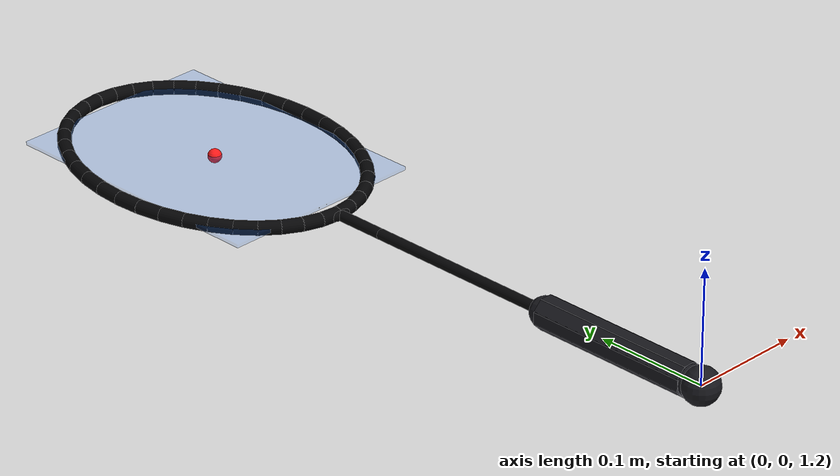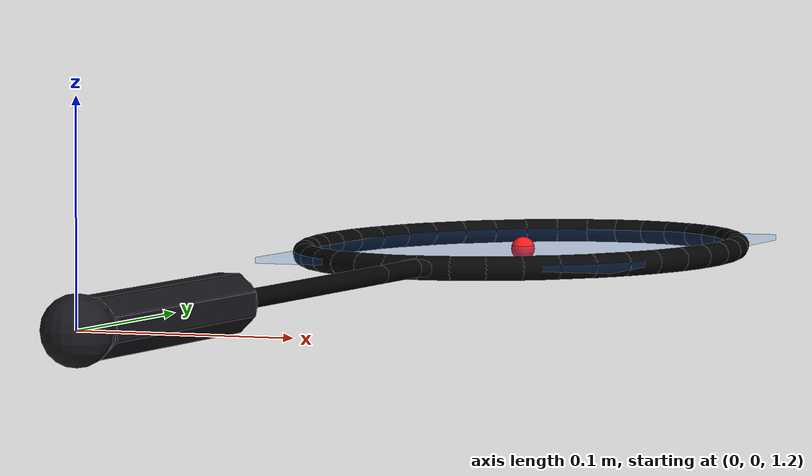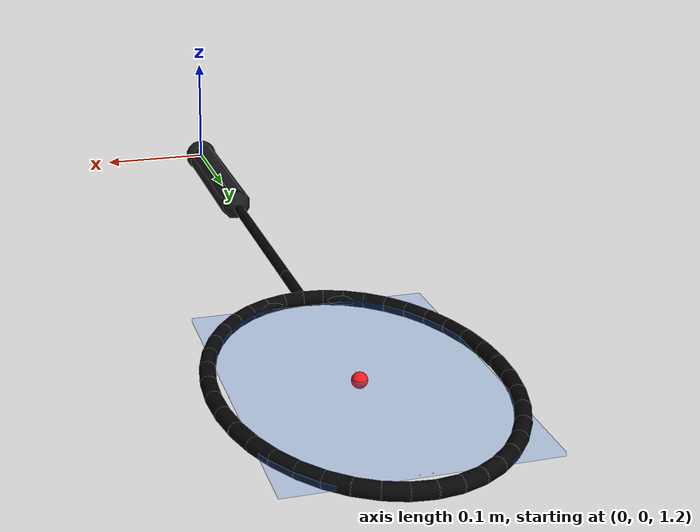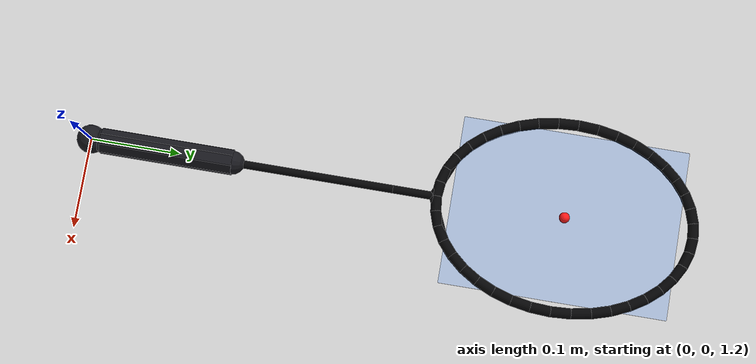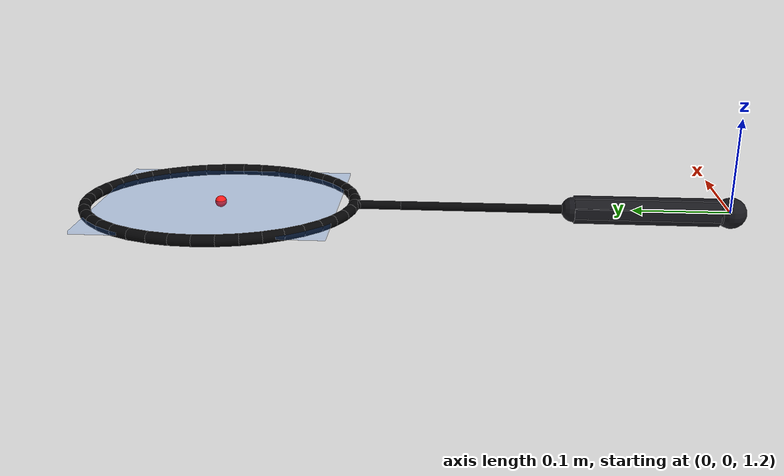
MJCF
<?xml version="1.0" encoding="UTF-8"?>
<mujoco model="badminton_racket_flex_proxy">
  <compiler angle="degree" autolimits="true"/>
  <option timestep="0.0005" integrator="implicitfast" gravity="0 0 -9.81"/>
  <default>
    <geom condim="3" friction="0.8 0.02 0.001" solref="0.0015 1" solimp="0.95 0.99 0.001"/>
    <site rgba="1 0.3 0.1 1"/>
    <default class="frame_contact">
      <geom contype="1" conaffinity="1"/>
    </default>
    <default class="string_visual">
      <geom contype="0" conaffinity="0"/>
    </default>
    <default class="stringbed_ground_contact">
      <geom contype="1" conaffinity="1" group="1" condim="4" friction="1.1 0.05 0.003" solref="0.004 1" solimp="0.92 0.98 0.001"/>
    </default>
  </default>
  <worldbody>
    <body name="racket_handle" pos="0 0 1.2">
      <freejoint name="racket_handle_free"/>
      <inertial pos="0 0.135 0" mass="0.035" diaginertia="0.00048 0.00004 0.00048"/>
      <site name="grip_pose_site" pos="0 0.09 0" size="0.006"/>
      <site name="butt_site" pos="0 0 0" size="0.004" rgba="0.1 1 0.1 1"/>
      <geom name="butt_cap" class="frame_contact" type="sphere" pos="0 0 0" size="0.016" rgba="0.1 0.1 0.12 1" contype="1" conaffinity="1"/>
      <geom name="handle_grip" type="capsule" pos="0 0.086 0" quat="0.707107 0.707107 0 0" size="0.01321 0.074" rgba="0.1 0.1 0.12 1" contype="0" conaffinity="0" condim="4" friction="1.4 0.03 0.003" solref="0.004 1" solimp="0.9 0.97 0.002" margin="0.001"/>
      <geom name="handle_bevel_00" class="frame_contact" type="box" pos="0.012525 0.086 0" quat="0.707107 0 0.707107 0" size="0.00519 0.074 0.001" rgba="0.1 0.1 0.12 1" contype="1" conaffinity="1"/>
      <geom name="handle_bevel_01" class="frame_contact" type="box" pos="0.008857 0.086 0.008857" quat="0.92388 0 0.382683 0" size="0.00519 0.074 0.001" rgba="0.1 0.1 0.12 1" contype="1" conaffinity="1"/>
      <geom name="handle_bevel_02" class="frame_contact" type="box" pos="0 0.086 0.012525" quat="1 0 0 0" size="0.00519 0.074 0.001" rgba="0.1 0.1 0.12 1" contype="1" conaffinity="1"/>
      <geom name="handle_bevel_03" class="frame_contact" type="box" pos="-0.008857 0.086 0.008857" quat="0.92388 0 -0.382683 0" size="0.00519 0.074 0.001" rgba="0.1 0.1 0.12 1" contype="1" conaffinity="1"/>
      <geom name="handle_bevel_04" class="frame_contact" type="box" pos="-0.012525 0.086 0" quat="0.707107 0 -0.707107 0" size="0.00519 0.074 0.001" rgba="0.1 0.1 0.12 1" contype="1" conaffinity="1"/>
      <geom name="handle_bevel_05" class="frame_contact" type="box" pos="-0.008857 0.086 -0.008857" quat="0.382683 0 -0.92388 0" size="0.00519 0.074 0.001" rgba="0.1 0.1 0.12 1" contype="1" conaffinity="1"/>
      <geom name="handle_bevel_06" class="frame_contact" type="box" pos="0 0.086 -0.012525" quat="0 0 -1 0" size="0.00519 0.074 0.001" rgba="0.1 0.1 0.12 1" contype="1" conaffinity="1"/>
      <geom name="handle_bevel_07" class="frame_contact" type="box" pos="0.008857 0.086 -0.008857" quat="-0.382683 0 -0.92388 0" size="0.00519 0.074 0.001" rgba="0.1 0.1 0.12 1" contype="1" conaffinity="1"/>
      <geom name="lower_shaft" class="frame_contact" type="capsule" fromto="0 0.17 0 0 0.34 0" size="0.0045" rgba="0.02 0.02 0.025 1" contype="1" conaffinity="1"/>
      <body name="racket_head" pos="0 0.34 0">
        <joint name="shaft_flex_x" type="hinge" axis="1 0 0" stiffness="398.6" damping="0.04" limited="true" range="-8 8"/>
        <joint name="shaft_flex_z" type="hinge" axis="0 0 1" stiffness="393.4" damping="0.045" limited="true" range="-8 8"/>
        <inertial pos="0 0.190 0" mass="0.055" diaginertia="0.00175 0.00014 0.00170"/>
        <site name="stringbed_center_site" pos="0 0.192 0" size="0.006" rgba="1 0.1 0.1 1"/>
        <site name="head_tip_site" pos="0 0.335 0" size="0.004" rgba="1 1 0 1"/>
        <geom name="upper_shaft" class="frame_contact" type="capsule" fromto="0 0 0 0 0.045 0" size="0.0045" rgba="0.02 0.02 0.025 1" contype="1" conaffinity="1"/>
        <geom name="throat_left" class="frame_contact" type="capsule" fromto="0 0.045 0 -0.052 0.067 0" size="0.0045" rgba="0.02 0.02 0.025 1" contype="1" conaffinity="1"/>
        <geom name="throat_right" class="frame_contact" type="capsule" fromto="0 0.045 0 0.052 0.067 0" size="0.0045" rgba="0.02 0.02 0.025 1" contype="1" conaffinity="1"/>
        <geom name="head_frame_00" class="frame_contact" type="capsule" fromto="0.105 0.192 0 0.103707 0.21437 0" size="0.006" rgba="0.02 0.02 0.025 1" contype="1" conaffinity="1"/>
        <geom name="head_frame_01" class="frame_contact" type="capsule" fromto="0.103707 0.21437 0 0.099861 0.236189 0" size="0.006" rgba="0.02 0.02 0.025 1" contype="1" conaffinity="1"/>
        <geom name="head_frame_02" class="frame_contact" type="capsule" fromto="0.099861 0.236189 0 0.093556 0.256921 0" size="0.006" rgba="0.02 0.02 0.025 1" contype="1" conaffinity="1"/>
        <geom name="head_frame_03" class="frame_contact" type="capsule" fromto="0.093556 0.256921 0 0.084947 0.276053 0" size="0.006" rgba="0.02 0.02 0.025 1" contype="1" conaffinity="1"/>
        <geom name="head_frame_04" class="frame_contact" type="capsule" fromto="0.084947 0.276053 0 0.074246 0.293116 0" size="0.006" rgba="0.02 0.02 0.025 1" contype="1" conaffinity="1"/>
        <geom name="head_frame_05" class="frame_contact" type="capsule" fromto="0.074246 0.293116 0 0.061717 0.307689 0" size="0.006" rgba="0.02 0.02 0.025 1" contype="1" conaffinity="1"/>
        <geom name="head_frame_06" class="frame_contact" type="capsule" fromto="0.061717 0.307689 0 0.047669 0.319414 0" size="0.006" rgba="0.02 0.02 0.025 1" contype="1" conaffinity="1"/>
        <geom name="head_frame_07" class="frame_contact" type="capsule" fromto="0.047669 0.319414 0 0.032447 0.328001 0" size="0.006" rgba="0.02 0.02 0.025 1" contype="1" conaffinity="1"/>
        <geom name="head_frame_08" class="frame_contact" type="capsule" fromto="0.032447 0.328001 0 0.016426 0.333239 0" size="0.006" rgba="0.02 0.02 0.025 1" contype="1" conaffinity="1"/>
        <geom name="head_frame_09" class="frame_contact" type="capsule" fromto="0.016426 0.333239 0 0 0.335 0" size="0.006" rgba="0.02 0.02 0.025 1" contype="1" conaffinity="1"/>
        <geom name="head_frame_10" class="frame_contact" type="capsule" fromto="0 0.335 0 -0.016426 0.333239 0" size="0.006" rgba="0.02 0.02 0.025 1" contype="1" conaffinity="1"/>
        <geom name="head_frame_11" class="frame_contact" type="capsule" fromto="-0.016426 0.333239 0 -0.032447 0.328001 0" size="0.006" rgba="0.02 0.02 0.025 1" contype="1" conaffinity="1"/>
        <geom name="head_frame_12" class="frame_contact" type="capsule" fromto="-0.032447 0.328001 0 -0.047669 0.319414 0" size="0.006" rgba="0.02 0.02 0.025 1" contype="1" conaffinity="1"/>
        <geom name="head_frame_13" class="frame_contact" type="capsule" fromto="-0.047669 0.319414 0 -0.061717 0.307689 0" size="0.006" rgba="0.02 0.02 0.025 1" contype="1" conaffinity="1"/>
        <geom name="head_frame_14" class="frame_contact" type="capsule" fromto="-0.061717 0.307689 0 -0.074246 0.293116 0" size="0.006" rgba="0.02 0.02 0.025 1" contype="1" conaffinity="1"/>
        <geom name="head_frame_15" class="frame_contact" type="capsule" fromto="-0.074246 0.293116 0 -0.084947 0.276053 0" size="0.006" rgba="0.02 0.02 0.025 1" contype="1" conaffinity="1"/>
        <geom name="head_frame_16" class="frame_contact" type="capsule" fromto="-0.084947 0.276053 0 -0.093556 0.256921 0" size="0.006" rgba="0.02 0.02 0.025 1" contype="1" conaffinity="1"/>
        <geom name="head_frame_17" class="frame_contact" type="capsule" fromto="-0.093556 0.256921 0 -0.099861 0.236189 0" size="0.006" rgba="0.02 0.02 0.025 1" contype="1" conaffinity="1"/>
        <geom name="head_frame_18" class="frame_contact" type="capsule" fromto="-0.099861 0.236189 0 -0.103707 0.21437 0" size="0.006" rgba="0.02 0.02 0.025 1" contype="1" conaffinity="1"/>
        <geom name="head_frame_19" class="frame_contact" type="capsule" fromto="-0.103707 0.21437 0 -0.105 0.192 0" size="0.006" rgba="0.02 0.02 0.025 1" contype="1" conaffinity="1"/>
        <geom name="head_frame_20" class="frame_contact" type="capsule" fromto="-0.105 0.192 0 -0.103707 0.16963 0" size="0.006" rgba="0.02 0.02 0.025 1" contype="1" conaffinity="1"/>
        <geom name="head_frame_21" class="frame_contact" type="capsule" fromto="-0.103707 0.16963 0 -0.099861 0.147811 0" size="0.006" rgba="0.02 0.02 0.025 1" contype="1" conaffinity="1"/>
        <geom name="head_frame_22" class="frame_contact" type="capsule" fromto="-0.099861 0.147811 0 -0.093556 0.127079 0" size="0.006" rgba="0.02 0.02 0.025 1" contype="1" conaffinity="1"/>
        <geom name="head_frame_23" class="frame_contact" type="capsule" fromto="-0.093556 0.127079 0 -0.084947 0.107947 0" size="0.006" rgba="0.02 0.02 0.025 1" contype="1" conaffinity="1"/>
        <geom name="head_frame_24" class="frame_contact" type="capsule" fromto="-0.084947 0.107947 0 -0.074246 0.090884 0" size="0.006" rgba="0.02 0.02 0.025 1" contype="1" conaffinity="1"/>
        <geom name="head_frame_25" class="frame_contact" type="capsule" fromto="-0.074246 0.090884 0 -0.061717 0.076311 0" size="0.006" rgba="0.02 0.02 0.025 1" contype="1" conaffinity="1"/>
        <geom name="head_frame_26" class="frame_contact" type="capsule" fromto="-0.061717 0.076311 0 -0.047669 0.064586 0" size="0.006" rgba="0.02 0.02 0.025 1" contype="1" conaffinity="1"/>
        <geom name="head_frame_27" class="frame_contact" type="capsule" fromto="-0.047669 0.064586 0 -0.032447 0.055999 0" size="0.006" rgba="0.02 0.02 0.025 1" contype="1" conaffinity="1"/>
        <geom name="head_frame_28" class="frame_contact" type="capsule" fromto="-0.032447 0.055999 0 -0.016426 0.050761 0" size="0.006" rgba="0.02 0.02 0.025 1" contype="1" conaffinity="1"/>
        <geom name="head_frame_29" class="frame_contact" type="capsule" fromto="-0.016426 0.050761 0 0 0.049 0" size="0.006" rgba="0.02 0.02 0.025 1" contype="1" conaffinity="1"/>
        <geom name="head_frame_30" class="frame_contact" type="capsule" fromto="0 0.049 0 0.016426 0.050761 0" size="0.006" rgba="0.02 0.02 0.025 1" contype="1" conaffinity="1"/>
        <geom name="head_frame_31" class="frame_contact" type="capsule" fromto="0.016426 0.050761 0 0.032447 0.055999 0" size="0.006" rgba="0.02 0.02 0.025 1" contype="1" conaffinity="1"/>
        <geom name="head_frame_32" class="frame_contact" type="capsule" fromto="0.032447 0.055999 0 0.047669 0.064586 0" size="0.006" rgba="0.02 0.02 0.025 1" contype="1" conaffinity="1"/>
        <geom name="head_frame_33" class="frame_contact" type="capsule" fromto="0.047669 0.064586 0 0.061717 0.076311 0" size="0.006" rgba="0.02 0.02 0.025 1" contype="1" conaffinity="1"/>
        <geom name="head_frame_34" class="frame_contact" type="capsule" fromto="0.061717 0.076311 0 0.074246 0.090884 0" size="0.006" rgba="0.02 0.02 0.025 1" contype="1" conaffinity="1"/>
        <geom name="head_frame_35" class="frame_contact" type="capsule" fromto="0.074246 0.090884 0 0.084947 0.107947 0" size="0.006" rgba="0.02 0.02 0.025 1" contype="1" conaffinity="1"/>
        <geom name="head_frame_36" class="frame_contact" type="capsule" fromto="0.084947 0.107947 0 0.093556 0.127079 0" size="0.006" rgba="0.02 0.02 0.025 1" contype="1" conaffinity="1"/>
        <geom name="head_frame_37" class="frame_contact" type="capsule" fromto="0.093556 0.127079 0 0.099861 0.147811 0" size="0.006" rgba="0.02 0.02 0.025 1" contype="1" conaffinity="1"/>
        <geom name="head_frame_38" class="frame_contact" type="capsule" fromto="0.099861 0.147811 0 0.103707 0.16963 0" size="0.006" rgba="0.02 0.02 0.025 1" contype="1" conaffinity="1"/>
        <geom name="head_frame_39" class="frame_contact" type="capsule" fromto="0.103707 0.16963 0 0.105 0.192 0" size="0.006" rgba="0.02 0.02 0.025 1" contype="1" conaffinity="1"/>
        <geom name="string_main_00" class="string_visual" type="capsule" fromto="-0.08836 0.148841 0.00055 -0.08836 0.235159 0.00055" size="0.00035" rgba="0.92 0.92 0.86 0.78" contype="0" conaffinity="0"/>
        <geom name="string_main_01" class="string_visual" type="capsule" fromto="-0.079945 0.125459 0.00055 -0.079945 0.258541 0.00055" size="0.00035" rgba="0.92 0.92 0.86 0.78" contype="0" conaffinity="0"/>
        <geom name="string_main_02" class="string_visual" type="capsule" fromto="-0.07153 0.109926 0.00055 -0.07153 0.274074 0.00055" size="0.00035" rgba="0.92 0.92 0.86 0.78" contype="0" conaffinity="0"/>
        <geom name="string_main_03" class="string_visual" type="capsule" fromto="-0.063114 0.098255 0.00055 -0.063114 0.285745 0.00055" size="0.00035" rgba="0.92 0.92 0.86 0.78" contype="0" conaffinity="0"/>
        <geom name="string_main_04" class="string_visual" type="capsule" fromto="-0.054699 0.089123 0.00055 -0.054699 0.294877 0.00055" size="0.00035" rgba="0.92 0.92 0.86 0.78" contype="0" conaffinity="0"/>
        <geom name="string_main_05" class="string_visual" type="capsule" fromto="-0.046284 0.081897 0.00055 -0.046284 0.302103 0.00055" size="0.00035" rgba="0.92 0.92 0.86 0.78" contype="0" conaffinity="0"/>
        <geom name="string_main_06" class="string_visual" type="capsule" fromto="-0.037869 0.076219 0.00055 -0.037869 0.307781 0.00055" size="0.00035" rgba="0.92 0.92 0.86 0.78" contype="0" conaffinity="0"/>
        <geom name="string_main_07" class="string_visual" type="capsule" fromto="-0.029453 0.07187 0.00055 -0.029453 0.31213 0.00055" size="0.00035" rgba="0.92 0.92 0.86 0.78" contype="0" conaffinity="0"/>
        <geom name="string_main_08" class="string_visual" type="capsule" fromto="-0.021038 0.068709 0.00055 -0.021038 0.315291 0.00055" size="0.00035" rgba="0.92 0.92 0.86 0.78" contype="0" conaffinity="0"/>
        <geom name="string_main_09" class="string_visual" type="capsule" fromto="-0.012623 0.066646 0.00055 -0.012623 0.317354 0.00055" size="0.00035" rgba="0.92 0.92 0.86 0.78" contype="0" conaffinity="0"/>
        <geom name="string_main_10" class="string_visual" type="capsule" fromto="-0.004208 0.065627 0.00055 -0.004208 0.318373 0.00055" size="0.00035" rgba="0.92 0.92 0.86 0.78" contype="0" conaffinity="0"/>
        <geom name="string_main_11" class="string_visual" type="capsule" fromto="0.004208 0.065627 0.00055 0.004208 0.318373 0.00055" size="0.00035" rgba="0.92 0.92 0.86 0.78" contype="0" conaffinity="0"/>
        <geom name="string_main_12" class="string_visual" type="capsule" fromto="0.012623 0.066646 0.00055 0.012623 0.317354 0.00055" size="0.00035" rgba="0.92 0.92 0.86 0.78" contype="0" conaffinity="0"/>
        <geom name="string_main_13" class="string_visual" type="capsule" fromto="0.021038 0.068709 0.00055 0.021038 0.315291 0.00055" size="0.00035" rgba="0.92 0.92 0.86 0.78" contype="0" conaffinity="0"/>
        <geom name="string_main_14" class="string_visual" type="capsule" fromto="0.029453 0.07187 0.00055 0.029453 0.31213 0.00055" size="0.00035" rgba="0.92 0.92 0.86 0.78" contype="0" conaffinity="0"/>
        <geom name="string_main_15" class="string_visual" type="capsule" fromto="0.037869 0.076219 0.00055 0.037869 0.307781 0.00055" size="0.00035" rgba="0.92 0.92 0.86 0.78" contype="0" conaffinity="0"/>
        <geom name="string_main_16" class="string_visual" type="capsule" fromto="0.046284 0.081897 0.00055 0.046284 0.302103 0.00055" size="0.00035" rgba="0.92 0.92 0.86 0.78" contype="0" conaffinity="0"/>
        <geom name="string_main_17" class="string_visual" type="capsule" fromto="0.054699 0.089123 0.00055 0.054699 0.294877 0.00055" size="0.00035" rgba="0.92 0.92 0.86 0.78" contype="0" conaffinity="0"/>
        <geom name="string_main_18" class="string_visual" type="capsule" fromto="0.063114 0.098255 0.00055 0.063114 0.285745 0.00055" size="0.00035" rgba="0.92 0.92 0.86 0.78" contype="0" conaffinity="0"/>
        <geom name="string_main_19" class="string_visual" type="capsule" fromto="0.07153 0.109926 0.00055 0.07153 0.274074 0.00055" size="0.00035" rgba="0.92 0.92 0.86 0.78" contype="0" conaffinity="0"/>
        <geom name="string_main_20" class="string_visual" type="capsule" fromto="0.079945 0.125459 0.00055 0.079945 0.258541 0.00055" size="0.00035" rgba="0.92 0.92 0.86 0.78" contype="0" conaffinity="0"/>
        <geom name="string_main_21" class="string_visual" type="capsule" fromto="0.08836 0.148841 0.00055 0.08836 0.235159 0.00055" size="0.00035" rgba="0.92 0.92 0.86 0.78" contype="0" conaffinity="0"/>
        <geom name="string_cross_00" class="string_visual" type="capsule" fromto="-0.03207 0.07309 -0.00055 0.03207 0.07309 -0.00055" size="0.00035" rgba="0.92 0.92 0.86 0.78" contype="0" conaffinity="0"/>
        <geom name="string_cross_01" class="string_visual" type="capsule" fromto="-0.050119 0.084981 -0.00055 0.050119 0.084981 -0.00055" size="0.00035" rgba="0.92 0.92 0.86 0.78" contype="0" conaffinity="0"/>
        <geom name="string_cross_02" class="string_visual" type="capsule" fromto="-0.061961 0.096872 -0.00055 0.061961 0.096872 -0.00055" size="0.00035" rgba="0.92 0.92 0.86 0.78" contype="0" conaffinity="0"/>
        <geom name="string_cross_03" class="string_visual" type="capsule" fromto="-0.070784 0.108763 -0.00055 0.070784 0.108763 -0.00055" size="0.00035" rgba="0.92 0.92 0.86 0.78" contype="0" conaffinity="0"/>
        <geom name="string_cross_04" class="string_visual" type="capsule" fromto="-0.077623 0.120654 -0.00055 0.077623 0.120654 -0.00055" size="0.00035" rgba="0.92 0.92 0.86 0.78" contype="0" conaffinity="0"/>
        <geom name="string_cross_05" class="string_visual" type="capsule" fromto="-0.082971 0.132545 -0.00055 0.082971 0.132545 -0.00055" size="0.00035" rgba="0.92 0.92 0.86 0.78" contype="0" conaffinity="0"/>
        <geom name="string_cross_06" class="string_visual" type="capsule" fromto="-0.087102 0.144436 -0.00055 0.087102 0.144436 -0.00055" size="0.00035" rgba="0.92 0.92 0.86 0.78" contype="0" conaffinity="0"/>
        <geom name="string_cross_07" class="string_visual" type="capsule" fromto="-0.090185 0.156327 -0.00055 0.090185 0.156327 -0.00055" size="0.00035" rgba="0.92 0.92 0.86 0.78" contype="0" conaffinity="0"/>
        <geom name="string_cross_08" class="string_visual" type="capsule" fromto="-0.092324 0.168218 -0.00055 0.092324 0.168218 -0.00055" size="0.00035" rgba="0.92 0.92 0.86 0.78" contype="0" conaffinity="0"/>
        <geom name="string_cross_09" class="string_visual" type="capsule" fromto="-0.093584 0.180109 -0.00055 0.093584 0.180109 -0.00055" size="0.00035" rgba="0.92 0.92 0.86 0.78" contype="0" conaffinity="0"/>
        <geom name="string_cross_10" class="string_visual" type="capsule" fromto="-0.094 0.192 -0.00055 0.094 0.192 -0.00055" size="0.00035" rgba="0.92 0.92 0.86 0.78" contype="0" conaffinity="0"/>
        <geom name="string_cross_11" class="string_visual" type="capsule" fromto="-0.093584 0.203891 -0.00055 0.093584 0.203891 -0.00055" size="0.00035" rgba="0.92 0.92 0.86 0.78" contype="0" conaffinity="0"/>
        <geom name="string_cross_12" class="string_visual" type="capsule" fromto="-0.092324 0.215782 -0.00055 0.092324 0.215782 -0.00055" size="0.00035" rgba="0.92 0.92 0.86 0.78" contype="0" conaffinity="0"/>
        <geom name="string_cross_13" class="string_visual" type="capsule" fromto="-0.090185 0.227673 -0.00055 0.090185 0.227673 -0.00055" size="0.00035" rgba="0.92 0.92 0.86 0.78" contype="0" conaffinity="0"/>
        <geom name="string_cross_14" class="string_visual" type="capsule" fromto="-0.087102 0.239564 -0.00055 0.087102 0.239564 -0.00055" size="0.00035" rgba="0.92 0.92 0.86 0.78" contype="0" conaffinity="0"/>
        <geom name="string_cross_15" class="string_visual" type="capsule" fromto="-0.082971 0.251455 -0.00055 0.082971 0.251455 -0.00055" size="0.00035" rgba="0.92 0.92 0.86 0.78" contype="0" conaffinity="0"/>
        <geom name="string_cross_16" class="string_visual" type="capsule" fromto="-0.077623 0.263346 -0.00055 0.077623 0.263346 -0.00055" size="0.00035" rgba="0.92 0.92 0.86 0.78" contype="0" conaffinity="0"/>
        <geom name="string_cross_17" class="string_visual" type="capsule" fromto="-0.070784 0.275237 -0.00055 0.070784 0.275237 -0.00055" size="0.00035" rgba="0.92 0.92 0.86 0.78" contype="0" conaffinity="0"/>
        <geom name="string_cross_18" class="string_visual" type="capsule" fromto="-0.061961 0.287128 -0.00055 0.061961 0.287128 -0.00055" size="0.00035" rgba="0.92 0.92 0.86 0.78" contype="0" conaffinity="0"/>
        <geom name="string_cross_19" class="string_visual" type="capsule" fromto="-0.050119 0.299019 -0.00055 0.050119 0.299019 -0.00055" size="0.00035" rgba="0.92 0.92 0.86 0.78" contype="0" conaffinity="0"/>
        <geom name="string_cross_20" class="string_visual" type="capsule" fromto="-0.03207 0.31091 -0.00055 0.03207 0.31091 -0.00055" size="0.00035" rgba="0.92 0.92 0.86 0.78" contype="0" conaffinity="0"/>
        <geom name="stringbed_proxy_visual" type="box" pos="0 0.192 0" size="0.094 0.1265 0.0015" rgba="0.1 0.45 1 0.08" contype="0" conaffinity="0"/>
      </body>
    </body>
  </worldbody>
</mujoco>
